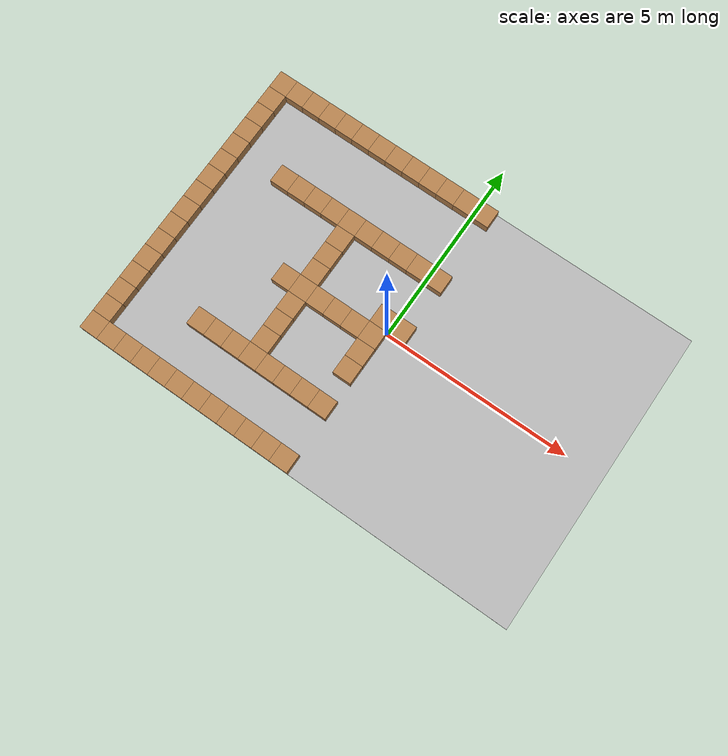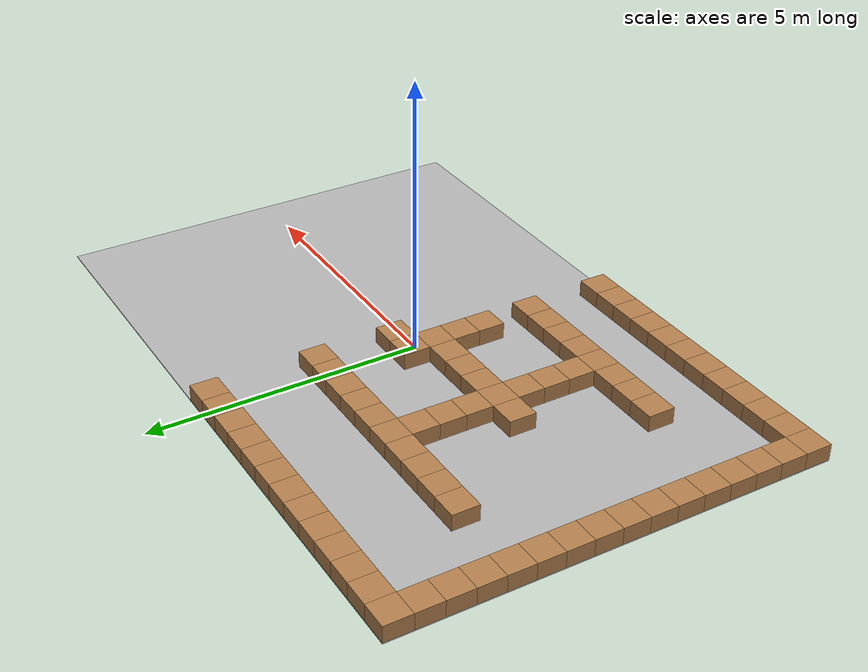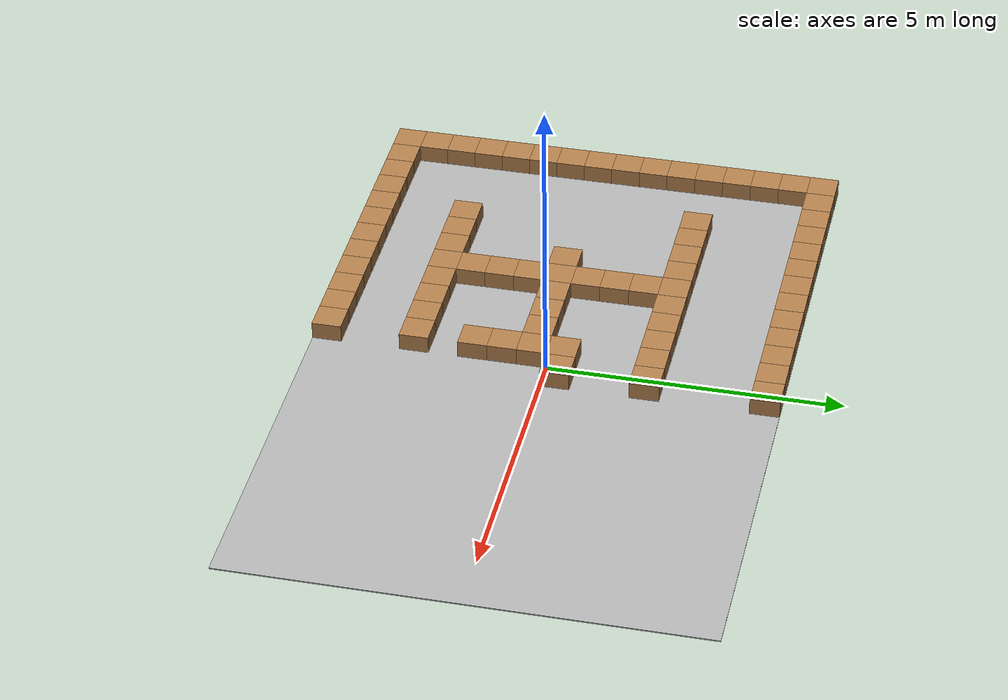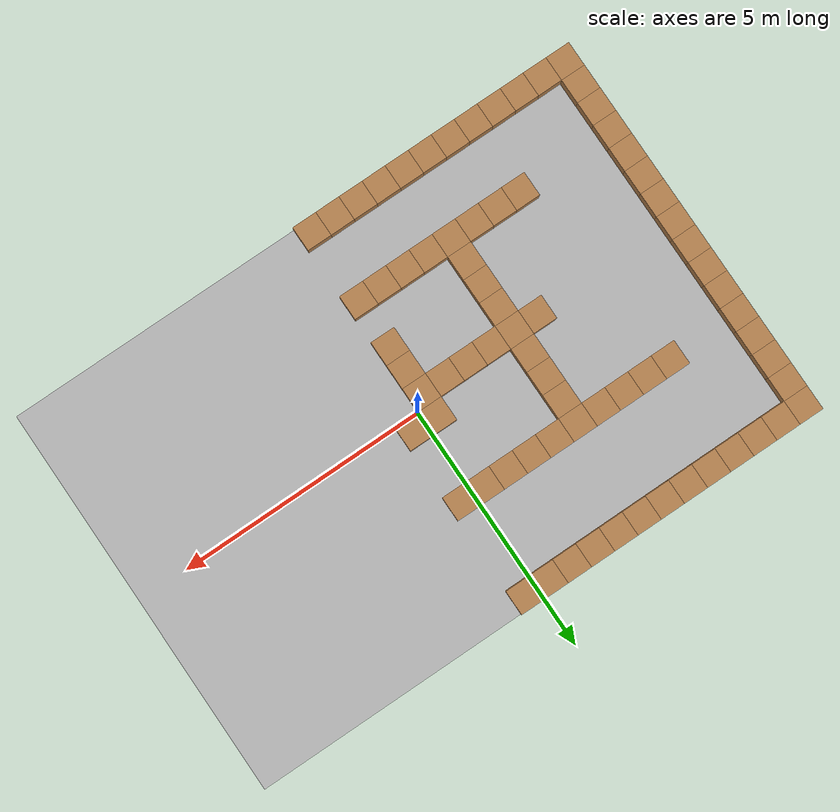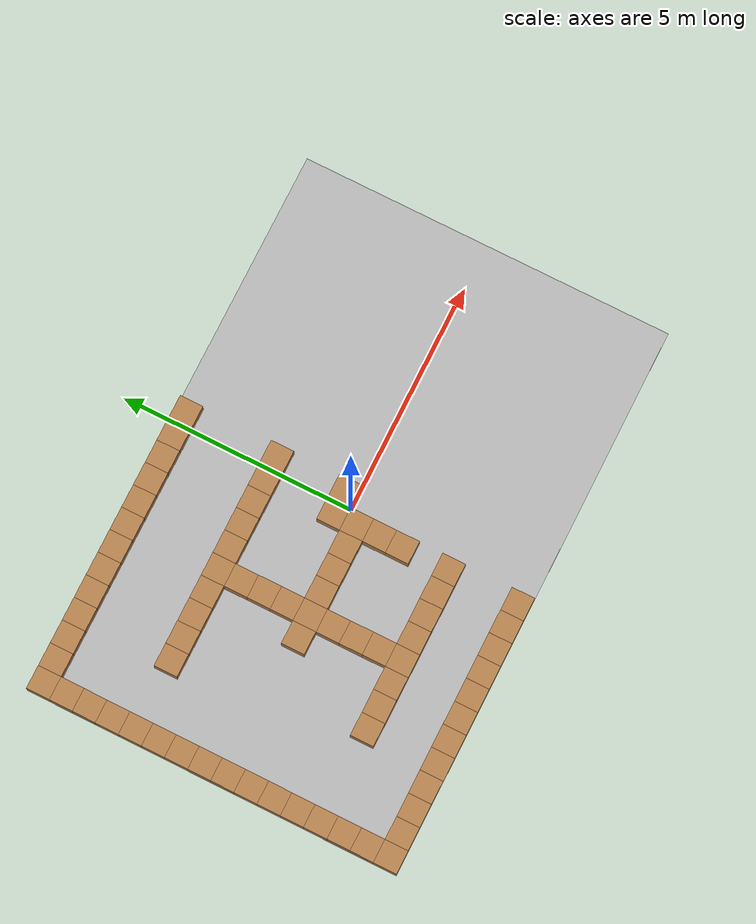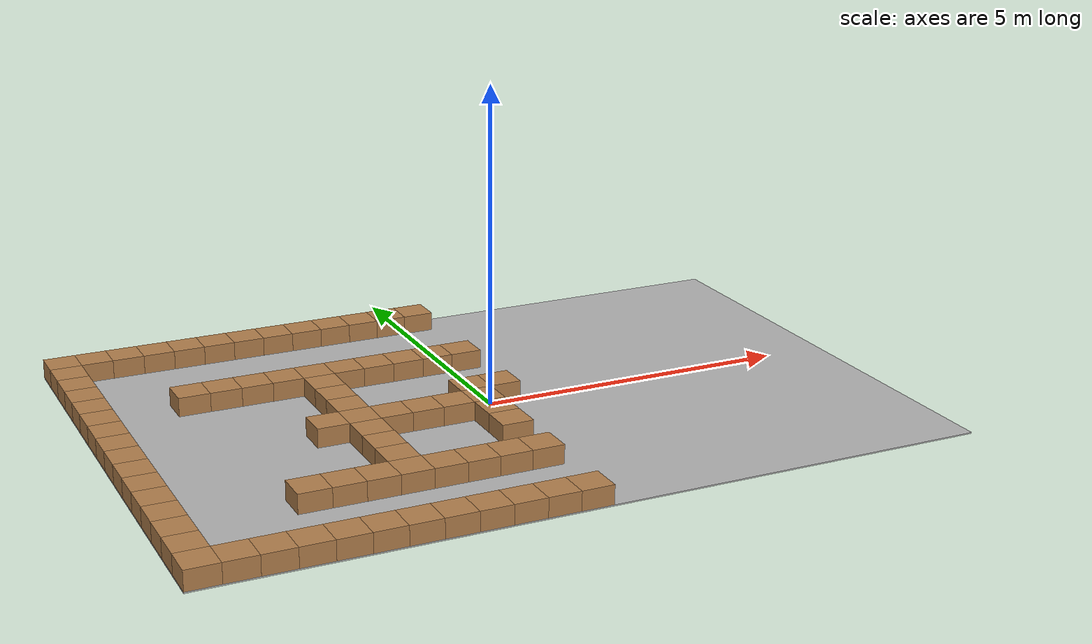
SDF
<sdf version="1.7">
 <world name="default">
  <model name="floor">
   <pose>0 0 -0.01 0 0 0</pose>
   <static>true</static>
   <link name="link">
    <collision name="col"><geometry><box><size>12.0 8.0 0.02</size></box></geometry></collision>
    <visual name="vis">
     <geometry><box><size>12.0 8.0 0.02</size></box></geometry>
     <material>
      <ambient>0.30 0.30 0.30 1</ambient>
      <diffuse>0.70 0.70 0.70 1</diffuse>
      <specular>0.10 0.10 0.10 1</specular>
     </material>
    </visual>
   </link>
  </model>
  <model name="tile_0_0">
   <pose>-5.75 3.75 0.15 0 0 0</pose>
   <static>true</static>
   <link name="link">
    <collision name="col"><geometry><box><size>0.5 0.5 0.3</size></box></geometry></collision>
    <visual name="vis">
     <geometry><box><size>0.5 0.5 0.3</size></box></geometry>
     <material>
      <ambient>0.30 0.20 0.10 1</ambient>
      <diffuse>0.70 0.50 0.30 1</diffuse>
      <specular>0.10 0.10 0.10 1</specular>
     </material>
    </visual>
   </link>
  </model>
  <model name="tile_0_1">
   <pose>-5.25 3.75 0.15 0 0 0</pose>
   <static>true</static>
   <link name="link">
    <collision name="col"><geometry><box><size>0.5 0.5 0.3</size></box></geometry></collision>
    <visual name="vis">
     <geometry><box><size>0.5 0.5 0.3</size></box></geometry>
     <material>
      <ambient>0.30 0.20 0.10 1</ambient>
      <diffuse>0.70 0.50 0.30 1</diffuse>
      <specular>0.10 0.10 0.10 1</specular>
     </material>
    </visual>
   </link>
  </model>
  <model name="tile_0_2">
   <pose>-4.75 3.75 0.15 0 0 0</pose>
   <static>true</static>
   <link name="link">
    <collision name="col"><geometry><box><size>0.5 0.5 0.3</size></box></geometry></collision>
    <visual name="vis">
     <geometry><box><size>0.5 0.5 0.3</size></box></geometry>
     <material>
      <ambient>0.30 0.20 0.10 1</ambient>
      <diffuse>0.70 0.50 0.30 1</diffuse>
      <specular>0.10 0.10 0.10 1</specular>
     </material>
    </visual>
   </link>
  </model>
  <model name="tile_0_3">
   <pose>-4.25 3.75 0.15 0 0 0</pose>
   <static>true</static>
   <link name="link">
    <collision name="col"><geometry><box><size>0.5 0.5 0.3</size></box></geometry></collision>
    <visual name="vis">
     <geometry><box><size>0.5 0.5 0.3</size></box></geometry>
     <material>
      <ambient>0.30 0.20 0.10 1</ambient>
      <diffuse>0.70 0.50 0.30 1</diffuse>
      <specular>0.10 0.10 0.10 1</specular>
     </material>
    </visual>
   </link>
  </model>
  <model name="tile_0_4">
   <pose>-3.75 3.75 0.15 0 0 0</pose>
   <static>true</static>
   <link name="link">
    <collision name="col"><geometry><box><size>0.5 0.5 0.3</size></box></geometry></collision>
    <visual name="vis">
     <geometry><box><size>0.5 0.5 0.3</size></box></geometry>
     <material>
      <ambient>0.30 0.20 0.10 1</ambient>
      <diffuse>0.70 0.50 0.30 1</diffuse>
      <specular>0.10 0.10 0.10 1</specular>
     </material>
    </visual>
   </link>
  </model>
  <model name="tile_0_5">
   <pose>-3.25 3.75 0.15 0 0 0</pose>
   <static>true</static>
   <link name="link">
    <collision name="col"><geometry><box><size>0.5 0.5 0.3</size></box></geometry></collision>
    <visual name="vis">
     <geometry><box><size>0.5 0.5 0.3</size></box></geometry>
     <material>
      <ambient>0.30 0.20 0.10 1</ambient>
      <diffuse>0.70 0.50 0.30 1</diffuse>
      <specular>0.10 0.10 0.10 1</specular>
     </material>
    </visual>
   </link>
  </model>
  <model name="tile_0_6">
   <pose>-2.75 3.75 0.15 0 0 0</pose>
   <static>true</static>
   <link name="link">
    <collision name="col"><geometry><box><size>0.5 0.5 0.3</size></box></geometry></collision>
    <visual name="vis">
     <geometry><box><size>0.5 0.5 0.3</size></box></geometry>
     <material>
      <ambient>0.30 0.20 0.10 1</ambient>
      <diffuse>0.70 0.50 0.30 1</diffuse>
      <specular>0.10 0.10 0.10 1</specular>
     </material>
    </visual>
   </link>
  </model>
  <model name="tile_0_7">
   <pose>-2.25 3.75 0.15 0 0 0</pose>
   <static>true</static>
   <link name="link">
    <collision name="col"><geometry><box><size>0.5 0.5 0.3</size></box></geometry></collision>
    <visual name="vis">
     <geometry><box><size>0.5 0.5 0.3</size></box></geometry>
     <material>
      <ambient>0.30 0.20 0.10 1</ambient>
      <diffuse>0.70 0.50 0.30 1</diffuse>
      <specular>0.10 0.10 0.10 1</specular>
     </material>
    </visual>
   </link>
  </model>
  <model name="tile_0_8">
   <pose>-1.75 3.75 0.15 0 0 0</pose>
   <static>true</static>
   <link name="link">
    <collision name="col"><geometry><box><size>0.5 0.5 0.3</size></box></geometry></collision>
    <visual name="vis">
     <geometry><box><size>0.5 0.5 0.3</size></box></geometry>
     <material>
      <ambient>0.30 0.20 0.10 1</ambient>
      <diffuse>0.70 0.50 0.30 1</diffuse>
      <specular>0.10 0.10 0.10 1</specular>
     </material>
    </visual>
   </link>
  </model>
  <model name="tile_0_9">
   <pose>-1.25 3.75 0.15 0 0 0</pose>
   <static>true</static>
   <link name="link">
    <collision name="col"><geometry><box><size>0.5 0.5 0.3</size></box></geometry></collision>
    <visual name="vis">
     <geometry><box><size>0.5 0.5 0.3</size></box></geometry>
     <material>
      <ambient>0.30 0.20 0.10 1</ambient>
      <diffuse>0.70 0.50 0.30 1</diffuse>
      <specular>0.10 0.10 0.10 1</specular>
     </material>
    </visual>
   </link>
  </model>
  <model name="tile_0_10">
   <pose>-0.75 3.75 0.15 0 0 0</pose>
   <static>true</static>
   <link name="link">
    <collision name="col"><geometry><box><size>0.5 0.5 0.3</size></box></geometry></collision>
    <visual name="vis">
     <geometry><box><size>0.5 0.5 0.3</size></box></geometry>
     <material>
      <ambient>0.30 0.20 0.10 1</ambient>
      <diffuse>0.70 0.50 0.30 1</diffuse>
      <specular>0.10 0.10 0.10 1</specular>
     </material>
    </visual>
   </link>
  </model>
  <model name="tile_0_11">
   <pose>-0.25 3.75 0.15 0 0 0</pose>
   <static>true</static>
   <link name="link">
    <collision name="col"><geometry><box><size>0.5 0.5 0.3</size></box></geometry></collision>
    <visual name="vis">
     <geometry><box><size>0.5 0.5 0.3</size></box></geometry>
     <material>
      <ambient>0.30 0.20 0.10 1</ambient>
      <diffuse>0.70 0.50 0.30 1</diffuse>
      <specular>0.10 0.10 0.10 1</specular>
     </material>
    </visual>
   </link>
  </model>
  <model name="tile_0_12">
   <pose>0.25 3.75 0.15 0 0 0</pose>
   <static>true</static>
   <link name="link">
    <collision name="col"><geometry><box><size>0.5 0.5 0.3</size></box></geometry></collision>
    <visual name="vis">
     <geometry><box><size>0.5 0.5 0.3</size></box></geometry>
     <material>
      <ambient>0.30 0.20 0.10 1</ambient>
      <diffuse>0.70 0.50 0.30 1</diffuse>
      <specular>0.10 0.10 0.10 1</specular>
     </material>
    </visual>
   </link>
  </model>
  <model name="tile_1_0">
   <pose>-5.75 3.25 0.15 0 0 0</pose>
   <static>true</static>
   <link name="link">
    <collision name="col"><geometry><box><size>0.5 0.5 0.3</size></box></geometry></collision>
    <visual name="vis">
     <geometry><box><size>0.5 0.5 0.3</size></box></geometry>
     <material>
      <ambient>0.30 0.20 0.10 1</ambient>
      <diffuse>0.70 0.50 0.30 1</diffuse>
      <specular>0.10 0.10 0.10 1</specular>
     </material>
    </visual>
   </link>
  </model>
  <model name="tile_2_0">
   <pose>-5.75 2.75 0.15 0 0 0</pose>
   <static>true</static>
   <link name="link">
    <collision name="col"><geometry><box><size>0.5 0.5 0.3</size></box></geometry></collision>
    <visual name="vis">
     <geometry><box><size>0.5 0.5 0.3</size></box></geometry>
     <material>
      <ambient>0.30 0.20 0.10 1</ambient>
      <diffuse>0.70 0.50 0.30 1</diffuse>
      <specular>0.10 0.10 0.10 1</specular>
     </material>
    </visual>
   </link>
  </model>
  <model name="tile_3_0">
   <pose>-5.75 2.25 0.15 0 0 0</pose>
   <static>true</static>
   <link name="link">
    <collision name="col"><geometry><box><size>0.5 0.5 0.3</size></box></geometry></collision>
    <visual name="vis">
     <geometry><box><size>0.5 0.5 0.3</size></box></geometry>
     <material>
      <ambient>0.30 0.20 0.10 1</ambient>
      <diffuse>0.70 0.50 0.30 1</diffuse>
      <specular>0.10 0.10 0.10 1</specular>
     </material>
    </visual>
   </link>
  </model>
  <model name="tile_4_0">
   <pose>-5.75 1.75 0.15 0 0 0</pose>
   <static>true</static>
   <link name="link">
    <collision name="col"><geometry><box><size>0.5 0.5 0.3</size></box></geometry></collision>
    <visual name="vis">
     <geometry><box><size>0.5 0.5 0.3</size></box></geometry>
     <material>
      <ambient>0.30 0.20 0.10 1</ambient>
      <diffuse>0.70 0.50 0.30 1</diffuse>
      <specular>0.10 0.10 0.10 1</specular>
     </material>
    </visual>
   </link>
  </model>
  <model name="tile_4_3">
   <pose>-4.25 1.75 0.15 0 0 0</pose>
   <static>true</static>
   <link name="link">
    <collision name="col"><geometry><box><size>0.5 0.5 0.3</size></box></geometry></collision>
    <visual name="vis">
     <geometry><box><size>0.5 0.5 0.3</size></box></geometry>
     <material>
      <ambient>0.30 0.20 0.10 1</ambient>
      <diffuse>0.70 0.50 0.30 1</diffuse>
      <specular>0.10 0.10 0.10 1</specular>
     </material>
    </visual>
   </link>
  </model>
  <model name="tile_4_4">
   <pose>-3.75 1.75 0.15 0 0 0</pose>
   <static>true</static>
   <link name="link">
    <collision name="col"><geometry><box><size>0.5 0.5 0.3</size></box></geometry></collision>
    <visual name="vis">
     <geometry><box><size>0.5 0.5 0.3</size></box></geometry>
     <material>
      <ambient>0.30 0.20 0.10 1</ambient>
      <diffuse>0.70 0.50 0.30 1</diffuse>
      <specular>0.10 0.10 0.10 1</specular>
     </material>
    </visual>
   </link>
  </model>
  <model name="tile_4_5">
   <pose>-3.25 1.75 0.15 0 0 0</pose>
   <static>true</static>
   <link name="link">
    <collision name="col"><geometry><box><size>0.5 0.5 0.3</size></box></geometry></collision>
    <visual name="vis">
     <geometry><box><size>0.5 0.5 0.3</size></box></geometry>
     <material>
      <ambient>0.30 0.20 0.10 1</ambient>
      <diffuse>0.70 0.50 0.30 1</diffuse>
      <specular>0.10 0.10 0.10 1</specular>
     </material>
    </visual>
   </link>
  </model>
  <model name="tile_4_6">
   <pose>-2.75 1.75 0.15 0 0 0</pose>
   <static>true</static>
   <link name="link">
    <collision name="col"><geometry><box><size>0.5 0.5 0.3</size></box></geometry></collision>
    <visual name="vis">
     <geometry><box><size>0.5 0.5 0.3</size></box></geometry>
     <material>
      <ambient>0.30 0.20 0.10 1</ambient>
      <diffuse>0.70 0.50 0.30 1</diffuse>
      <specular>0.10 0.10 0.10 1</specular>
     </material>
    </visual>
   </link>
  </model>
  <model name="tile_4_7">
   <pose>-2.25 1.75 0.15 0 0 0</pose>
   <static>true</static>
   <link name="link">
    <collision name="col"><geometry><box><size>0.5 0.5 0.3</size></box></geometry></collision>
    <visual name="vis">
     <geometry><box><size>0.5 0.5 0.3</size></box></geometry>
     <material>
      <ambient>0.30 0.20 0.10 1</ambient>
      <diffuse>0.70 0.50 0.30 1</diffuse>
      <specular>0.10 0.10 0.10 1</specular>
     </material>
    </visual>
   </link>
  </model>
  <model name="tile_4_8">
   <pose>-1.75 1.75 0.15 0 0 0</pose>
   <static>true</static>
   <link name="link">
    <collision name="col"><geometry><box><size>0.5 0.5 0.3</size></box></geometry></collision>
    <visual name="vis">
     <geometry><box><size>0.5 0.5 0.3</size></box></geometry>
     <material>
      <ambient>0.30 0.20 0.10 1</ambient>
      <diffuse>0.70 0.50 0.30 1</diffuse>
      <specular>0.10 0.10 0.10 1</specular>
     </material>
    </visual>
   </link>
  </model>
  <model name="tile_4_9">
   <pose>-1.25 1.75 0.15 0 0 0</pose>
   <static>true</static>
   <link name="link">
    <collision name="col"><geometry><box><size>0.5 0.5 0.3</size></box></geometry></collision>
    <visual name="vis">
     <geometry><box><size>0.5 0.5 0.3</size></box></geometry>
     <material>
      <ambient>0.30 0.20 0.10 1</ambient>
      <diffuse>0.70 0.50 0.30 1</diffuse>
      <specular>0.10 0.10 0.10 1</specular>
     </material>
    </visual>
   </link>
  </model>
  <model name="tile_4_10">
   <pose>-0.75 1.75 0.15 0 0 0</pose>
   <static>true</static>
   <link name="link">
    <collision name="col"><geometry><box><size>0.5 0.5 0.3</size></box></geometry></collision>
    <visual name="vis">
     <geometry><box><size>0.5 0.5 0.3</size></box></geometry>
     <material>
      <ambient>0.30 0.20 0.10 1</ambient>
      <diffuse>0.70 0.50 0.30 1</diffuse>
      <specular>0.10 0.10 0.10 1</specular>
     </material>
    </visual>
   </link>
  </model>
  <model name="tile_4_11">
   <pose>-0.25 1.75 0.15 0 0 0</pose>
   <static>true</static>
   <link name="link">
    <collision name="col"><geometry><box><size>0.5 0.5 0.3</size></box></geometry></collision>
    <visual name="vis">
     <geometry><box><size>0.5 0.5 0.3</size></box></geometry>
     <material>
      <ambient>0.30 0.20 0.10 1</ambient>
      <diffuse>0.70 0.50 0.30 1</diffuse>
      <specular>0.10 0.10 0.10 1</specular>
     </material>
    </visual>
   </link>
  </model>
  <model name="tile_4_12">
   <pose>0.25 1.75 0.15 0 0 0</pose>
   <static>true</static>
   <link name="link">
    <collision name="col"><geometry><box><size>0.5 0.5 0.3</size></box></geometry></collision>
    <visual name="vis">
     <geometry><box><size>0.5 0.5 0.3</size></box></geometry>
     <material>
      <ambient>0.30 0.20 0.10 1</ambient>
      <diffuse>0.70 0.50 0.30 1</diffuse>
      <specular>0.10 0.10 0.10 1</specular>
     </material>
    </visual>
   </link>
  </model>
  <model name="tile_5_0">
   <pose>-5.75 1.25 0.15 0 0 0</pose>
   <static>true</static>
   <link name="link">
    <collision name="col"><geometry><box><size>0.5 0.5 0.3</size></box></geometry></collision>
    <visual name="vis">
     <geometry><box><size>0.5 0.5 0.3</size></box></geometry>
     <material>
      <ambient>0.30 0.20 0.10 1</ambient>
      <diffuse>0.70 0.50 0.30 1</diffuse>
      <specular>0.10 0.10 0.10 1</specular>
     </material>
    </visual>
   </link>
  </model>
  <model name="tile_5_7">
   <pose>-2.25 1.25 0.15 0 0 0</pose>
   <static>true</static>
   <link name="link">
    <collision name="col"><geometry><box><size>0.5 0.5 0.3</size></box></geometry></collision>
    <visual name="vis">
     <geometry><box><size>0.5 0.5 0.3</size></box></geometry>
     <material>
      <ambient>0.30 0.20 0.10 1</ambient>
      <diffuse>0.70 0.50 0.30 1</diffuse>
      <specular>0.10 0.10 0.10 1</specular>
     </material>
    </visual>
   </link>
  </model>
  <model name="tile_6_0">
   <pose>-5.75 0.75 0.15 0 0 0</pose>
   <static>true</static>
   <link name="link">
    <collision name="col"><geometry><box><size>0.5 0.5 0.3</size></box></geometry></collision>
    <visual name="vis">
     <geometry><box><size>0.5 0.5 0.3</size></box></geometry>
     <material>
      <ambient>0.30 0.20 0.10 1</ambient>
      <diffuse>0.70 0.50 0.30 1</diffuse>
      <specular>0.10 0.10 0.10 1</specular>
     </material>
    </visual>
   </link>
  </model>
  <model name="tile_6_7">
   <pose>-2.25 0.75 0.15 0 0 0</pose>
   <static>true</static>
   <link name="link">
    <collision name="col"><geometry><box><size>0.5 0.5 0.3</size></box></geometry></collision>
    <visual name="vis">
     <geometry><box><size>0.5 0.5 0.3</size></box></geometry>
     <material>
      <ambient>0.30 0.20 0.10 1</ambient>
      <diffuse>0.70 0.50 0.30 1</diffuse>
      <specular>0.10 0.10 0.10 1</specular>
     </material>
    </visual>
   </link>
  </model>
  <model name="tile_7_0">
   <pose>-5.75 0.25 0.15 0 0 0</pose>
   <static>true</static>
   <link name="link">
    <collision name="col"><geometry><box><size>0.5 0.5 0.3</size></box></geometry></collision>
    <visual name="vis">
     <geometry><box><size>0.5 0.5 0.3</size></box></geometry>
     <material>
      <ambient>0.30 0.20 0.10 1</ambient>
      <diffuse>0.70 0.50 0.30 1</diffuse>
      <specular>0.10 0.10 0.10 1</specular>
     </material>
    </visual>
   </link>
  </model>
  <model name="tile_7_7">
   <pose>-2.25 0.25 0.15 0 0 0</pose>
   <static>true</static>
   <link name="link">
    <collision name="col"><geometry><box><size>0.5 0.5 0.3</size></box></geometry></collision>
    <visual name="vis">
     <geometry><box><size>0.5 0.5 0.3</size></box></geometry>
     <material>
      <ambient>0.30 0.20 0.10 1</ambient>
      <diffuse>0.70 0.50 0.30 1</diffuse>
      <specular>0.10 0.10 0.10 1</specular>
     </material>
    </visual>
   </link>
  </model>
  <model name="tile_7_11">
   <pose>-0.25 0.25 0.15 0 0 0</pose>
   <static>true</static>
   <link name="link">
    <collision name="col"><geometry><box><size>0.5 0.5 0.3</size></box></geometry></collision>
    <visual name="vis">
     <geometry><box><size>0.5 0.5 0.3</size></box></geometry>
     <material>
      <ambient>0.30 0.20 0.10 1</ambient>
      <diffuse>0.70 0.50 0.30 1</diffuse>
      <specular>0.10 0.10 0.10 1</specular>
     </material>
    </visual>
   </link>
  </model>
  <model name="tile_7_12">
   <pose>0.25 0.25 0.15 0 0 0</pose>
   <static>true</static>
   <link name="link">
    <collision name="col"><geometry><box><size>0.5 0.5 0.3</size></box></geometry></collision>
    <visual name="vis">
     <geometry><box><size>0.5 0.5 0.3</size></box></geometry>
     <material>
      <ambient>0.30 0.20 0.10 1</ambient>
      <diffuse>0.70 0.50 0.30 1</diffuse>
      <specular>0.10 0.10 0.10 1</specular>
     </material>
    </visual>
   </link>
  </model>
  <model name="tile_8_0">
   <pose>-5.75 -0.25 0.15 0 0 0</pose>
   <static>true</static>
   <link name="link">
    <collision name="col"><geometry><box><size>0.5 0.5 0.3</size></box></geometry></collision>
    <visual name="vis">
     <geometry><box><size>0.5 0.5 0.3</size></box></geometry>
     <material>
      <ambient>0.30 0.20 0.10 1</ambient>
      <diffuse>0.70 0.50 0.30 1</diffuse>
      <specular>0.10 0.10 0.10 1</specular>
     </material>
    </visual>
   </link>
  </model>
  <model name="tile_8_6">
   <pose>-2.75 -0.25 0.15 0 0 0</pose>
   <static>true</static>
   <link name="link">
    <collision name="col"><geometry><box><size>0.5 0.5 0.3</size></box></geometry></collision>
    <visual name="vis">
     <geometry><box><size>0.5 0.5 0.3</size></box></geometry>
     <material>
      <ambient>0.30 0.20 0.10 1</ambient>
      <diffuse>0.70 0.50 0.30 1</diffuse>
      <specular>0.10 0.10 0.10 1</specular>
     </material>
    </visual>
   </link>
  </model>
  <model name="tile_8_7">
   <pose>-2.25 -0.25 0.15 0 0 0</pose>
   <static>true</static>
   <link name="link">
    <collision name="col"><geometry><box><size>0.5 0.5 0.3</size></box></geometry></collision>
    <visual name="vis">
     <geometry><box><size>0.5 0.5 0.3</size></box></geometry>
     <material>
      <ambient>0.30 0.20 0.10 1</ambient>
      <diffuse>0.70 0.50 0.30 1</diffuse>
      <specular>0.10 0.10 0.10 1</specular>
     </material>
    </visual>
   </link>
  </model>
  <model name="tile_8_8">
   <pose>-1.75 -0.25 0.15 0 0 0</pose>
   <static>true</static>
   <link name="link">
    <collision name="col"><geometry><box><size>0.5 0.5 0.3</size></box></geometry></collision>
    <visual name="vis">
     <geometry><box><size>0.5 0.5 0.3</size></box></geometry>
     <material>
      <ambient>0.30 0.20 0.10 1</ambient>
      <diffuse>0.70 0.50 0.30 1</diffuse>
      <specular>0.10 0.10 0.10 1</specular>
     </material>
    </visual>
   </link>
  </model>
  <model name="tile_8_9">
   <pose>-1.25 -0.25 0.15 0 0 0</pose>
   <static>true</static>
   <link name="link">
    <collision name="col"><geometry><box><size>0.5 0.5 0.3</size></box></geometry></collision>
    <visual name="vis">
     <geometry><box><size>0.5 0.5 0.3</size></box></geometry>
     <material>
      <ambient>0.30 0.20 0.10 1</ambient>
      <diffuse>0.70 0.50 0.30 1</diffuse>
      <specular>0.10 0.10 0.10 1</specular>
     </material>
    </visual>
   </link>
  </model>
  <model name="tile_8_10">
   <pose>-0.75 -0.25 0.15 0 0 0</pose>
   <static>true</static>
   <link name="link">
    <collision name="col"><geometry><box><size>0.5 0.5 0.3</size></box></geometry></collision>
    <visual name="vis">
     <geometry><box><size>0.5 0.5 0.3</size></box></geometry>
     <material>
      <ambient>0.30 0.20 0.10 1</ambient>
      <diffuse>0.70 0.50 0.30 1</diffuse>
      <specular>0.10 0.10 0.10 1</specular>
     </material>
    </visual>
   </link>
  </model>
  <model name="tile_8_11">
   <pose>-0.25 -0.25 0.15 0 0 0</pose>
   <static>true</static>
   <link name="link">
    <collision name="col"><geometry><box><size>0.5 0.5 0.3</size></box></geometry></collision>
    <visual name="vis">
     <geometry><box><size>0.5 0.5 0.3</size></box></geometry>
     <material>
      <ambient>0.30 0.20 0.10 1</ambient>
      <diffuse>0.70 0.50 0.30 1</diffuse>
      <specular>0.10 0.10 0.10 1</specular>
     </material>
    </visual>
   </link>
  </model>
  <model name="tile_9_0">
   <pose>-5.75 -0.75 0.15 0 0 0</pose>
   <static>true</static>
   <link name="link">
    <collision name="col"><geometry><box><size>0.5 0.5 0.3</size></box></geometry></collision>
    <visual name="vis">
     <geometry><box><size>0.5 0.5 0.3</size></box></geometry>
     <material>
      <ambient>0.30 0.20 0.10 1</ambient>
      <diffuse>0.70 0.50 0.30 1</diffuse>
      <specular>0.10 0.10 0.10 1</specular>
     </material>
    </visual>
   </link>
  </model>
  <model name="tile_9_7">
   <pose>-2.25 -0.75 0.15 0 0 0</pose>
   <static>true</static>
   <link name="link">
    <collision name="col"><geometry><box><size>0.5 0.5 0.3</size></box></geometry></collision>
    <visual name="vis">
     <geometry><box><size>0.5 0.5 0.3</size></box></geometry>
     <material>
      <ambient>0.30 0.20 0.10 1</ambient>
      <diffuse>0.70 0.50 0.30 1</diffuse>
      <specular>0.10 0.10 0.10 1</specular>
     </material>
    </visual>
   </link>
  </model>
  <model name="tile_9_11">
   <pose>-0.25 -0.75 0.15 0 0 0</pose>
   <static>true</static>
   <link name="link">
    <collision name="col"><geometry><box><size>0.5 0.5 0.3</size></box></geometry></collision>
    <visual name="vis">
     <geometry><box><size>0.5 0.5 0.3</size></box></geometry>
     <material>
      <ambient>0.30 0.20 0.10 1</ambient>
      <diffuse>0.70 0.50 0.30 1</diffuse>
      <specular>0.10 0.10 0.10 1</specular>
     </material>
    </visual>
   </link>
  </model>
  <model name="tile_10_0">
   <pose>-5.75 -1.25 0.15 0 0 0</pose>
   <static>true</static>
   <link name="link">
    <collision name="col"><geometry><box><size>0.5 0.5 0.3</size></box></geometry></collision>
    <visual name="vis">
     <geometry><box><size>0.5 0.5 0.3</size></box></geometry>
     <material>
      <ambient>0.30 0.20 0.10 1</ambient>
      <diffuse>0.70 0.50 0.30 1</diffuse>
      <specular>0.10 0.10 0.10 1</specular>
     </material>
    </visual>
   </link>
  </model>
  <model name="tile_10_7">
   <pose>-2.25 -1.25 0.15 0 0 0</pose>
   <static>true</static>
   <link name="link">
    <collision name="col"><geometry><box><size>0.5 0.5 0.3</size></box></geometry></collision>
    <visual name="vis">
     <geometry><box><size>0.5 0.5 0.3</size></box></geometry>
     <material>
      <ambient>0.30 0.20 0.10 1</ambient>
      <diffuse>0.70 0.50 0.30 1</diffuse>
      <specular>0.10 0.10 0.10 1</specular>
     </material>
    </visual>
   </link>
  </model>
  <model name="tile_10_11">
   <pose>-0.25 -1.25 0.15 0 0 0</pose>
   <static>true</static>
   <link name="link">
    <collision name="col"><geometry><box><size>0.5 0.5 0.3</size></box></geometry></collision>
    <visual name="vis">
     <geometry><box><size>0.5 0.5 0.3</size></box></geometry>
     <material>
      <ambient>0.30 0.20 0.10 1</ambient>
      <diffuse>0.70 0.50 0.30 1</diffuse>
      <specular>0.10 0.10 0.10 1</specular>
     </material>
    </visual>
   </link>
  </model>
  <model name="tile_11_0">
   <pose>-5.75 -1.75 0.15 0 0 0</pose>
   <static>true</static>
   <link name="link">
    <collision name="col"><geometry><box><size>0.5 0.5 0.3</size></box></geometry></collision>
    <visual name="vis">
     <geometry><box><size>0.5 0.5 0.3</size></box></geometry>
     <material>
      <ambient>0.30 0.20 0.10 1</ambient>
      <diffuse>0.70 0.50 0.30 1</diffuse>
      <specular>0.10 0.10 0.10 1</specular>
     </material>
    </visual>
   </link>
  </model>
  <model name="tile_11_7">
   <pose>-2.25 -1.75 0.15 0 0 0</pose>
   <static>true</static>
   <link name="link">
    <collision name="col"><geometry><box><size>0.5 0.5 0.3</size></box></geometry></collision>
    <visual name="vis">
     <geometry><box><size>0.5 0.5 0.3</size></box></geometry>
     <material>
      <ambient>0.30 0.20 0.10 1</ambient>
      <diffuse>0.70 0.50 0.30 1</diffuse>
      <specular>0.10 0.10 0.10 1</specular>
     </material>
    </visual>
   </link>
  </model>
  <model name="tile_12_0">
   <pose>-5.75 -2.25 0.15 0 0 0</pose>
   <static>true</static>
   <link name="link">
    <collision name="col"><geometry><box><size>0.5 0.5 0.3</size></box></geometry></collision>
    <visual name="vis">
     <geometry><box><size>0.5 0.5 0.3</size></box></geometry>
     <material>
      <ambient>0.30 0.20 0.10 1</ambient>
      <diffuse>0.70 0.50 0.30 1</diffuse>
      <specular>0.10 0.10 0.10 1</specular>
     </material>
    </visual>
   </link>
  </model>
  <model name="tile_12_4">
   <pose>-3.75 -2.25 0.15 0 0 0</pose>
   <static>true</static>
   <link name="link">
    <collision name="col"><geometry><box><size>0.5 0.5 0.3</size></box></geometry></collision>
    <visual name="vis">
     <geometry><box><size>0.5 0.5 0.3</size></box></geometry>
     <material>
      <ambient>0.30 0.20 0.10 1</ambient>
      <diffuse>0.70 0.50 0.30 1</diffuse>
      <specular>0.10 0.10 0.10 1</specular>
     </material>
    </visual>
   </link>
  </model>
  <model name="tile_12_5">
   <pose>-3.25 -2.25 0.15 0 0 0</pose>
   <static>true</static>
   <link name="link">
    <collision name="col"><geometry><box><size>0.5 0.5 0.3</size></box></geometry></collision>
    <visual name="vis">
     <geometry><box><size>0.5 0.5 0.3</size></box></geometry>
     <material>
      <ambient>0.30 0.20 0.10 1</ambient>
      <diffuse>0.70 0.50 0.30 1</diffuse>
      <specular>0.10 0.10 0.10 1</specular>
     </material>
    </visual>
   </link>
  </model>
  <model name="tile_12_6">
   <pose>-2.75 -2.25 0.15 0 0 0</pose>
   <static>true</static>
   <link name="link">
    <collision name="col"><geometry><box><size>0.5 0.5 0.3</size></box></geometry></collision>
    <visual name="vis">
     <geometry><box><size>0.5 0.5 0.3</size></box></geometry>
     <material>
      <ambient>0.30 0.20 0.10 1</ambient>
      <diffuse>0.70 0.50 0.30 1</diffuse>
      <specular>0.10 0.10 0.10 1</specular>
     </material>
    </visual>
   </link>
  </model>
  <model name="tile_12_7">
   <pose>-2.25 -2.25 0.15 0 0 0</pose>
   <static>true</static>
   <link name="link">
    <collision name="col"><geometry><box><size>0.5 0.5 0.3</size></box></geometry></collision>
    <visual name="vis">
     <geometry><box><size>0.5 0.5 0.3</size></box></geometry>
     <material>
      <ambient>0.30 0.20 0.10 1</ambient>
      <diffuse>0.70 0.50 0.30 1</diffuse>
      <specular>0.10 0.10 0.10 1</specular>
     </material>
    </visual>
   </link>
  </model>
  <model name="tile_12_8">
   <pose>-1.75 -2.25 0.15 0 0 0</pose>
   <static>true</static>
   <link name="link">
    <collision name="col"><geometry><box><size>0.5 0.5 0.3</size></box></geometry></collision>
    <visual name="vis">
     <geometry><box><size>0.5 0.5 0.3</size></box></geometry>
     <material>
      <ambient>0.30 0.20 0.10 1</ambient>
      <diffuse>0.70 0.50 0.30 1</diffuse>
      <specular>0.10 0.10 0.10 1</specular>
     </material>
    </visual>
   </link>
  </model>
  <model name="tile_12_9">
   <pose>-1.25 -2.25 0.15 0 0 0</pose>
   <static>true</static>
   <link name="link">
    <collision name="col"><geometry><box><size>0.5 0.5 0.3</size></box></geometry></collision>
    <visual name="vis">
     <geometry><box><size>0.5 0.5 0.3</size></box></geometry>
     <material>
      <ambient>0.30 0.20 0.10 1</ambient>
      <diffuse>0.70 0.50 0.30 1</diffuse>
      <specular>0.10 0.10 0.10 1</specular>
     </material>
    </visual>
   </link>
  </model>
  <model name="tile_12_10">
   <pose>-0.75 -2.25 0.15 0 0 0</pose>
   <static>true</static>
   <link name="link">
    <collision name="col"><geometry><box><size>0.5 0.5 0.3</size></box></geometry></collision>
    <visual name="vis">
     <geometry><box><size>0.5 0.5 0.3</size></box></geometry>
     <material>
      <ambient>0.30 0.20 0.10 1</ambient>
      <diffuse>0.70 0.50 0.30 1</diffuse>
      <specular>0.10 0.10 0.10 1</specular>
     </material>
    </visual>
   </link>
  </model>
  <model name="tile_12_11">
   <pose>-0.25 -2.25 0.15 0 0 0</pose>
   <static>true</static>
   <link name="link">
    <collision name="col"><geometry><box><size>0.5 0.5 0.3</size></box></geometry></collision>
    <visual name="vis">
     <geometry><box><size>0.5 0.5 0.3</size></box></geometry>
     <material>
      <ambient>0.30 0.20 0.10 1</ambient>
      <diffuse>0.70 0.50 0.30 1</diffuse>
      <specular>0.10 0.10 0.10 1</specular>
     </material>
    </visual>
   </link>
  </model>
  <model name="tile_13_0">
   <pose>-5.75 -2.75 0.15 0 0 0</pose>
   <static>true</static>
   <link name="link">
    <collision name="col"><geometry><box><size>0.5 0.5 0.3</size></box></geometry></collision>
    <visual name="vis">
     <geometry><box><size>0.5 0.5 0.3</size></box></geometry>
     <material>
      <ambient>0.30 0.20 0.10 1</ambient>
      <diffuse>0.70 0.50 0.30 1</diffuse>
      <specular>0.10 0.10 0.10 1</specular>
     </material>
    </visual>
   </link>
  </model>
  <model name="tile_14_0">
   <pose>-5.75 -3.25 0.15 0 0 0</pose>
   <static>true</static>
   <link name="link">
    <collision name="col"><geometry><box><size>0.5 0.5 0.3</size></box></geometry></collision>
    <visual name="vis">
     <geometry><box><size>0.5 0.5 0.3</size></box></geometry>
     <material>
      <ambient>0.30 0.20 0.10 1</ambient>
      <diffuse>0.70 0.50 0.30 1</diffuse>
      <specular>0.10 0.10 0.10 1</specular>
     </material>
    </visual>
   </link>
  </model>
  <model name="tile_15_0">
   <pose>-5.75 -3.75 0.15 0 0 0</pose>
   <static>true</static>
   <link name="link">
    <collision name="col"><geometry><box><size>0.5 0.5 0.3</size></box></geometry></collision>
    <visual name="vis">
     <geometry><box><size>0.5 0.5 0.3</size></box></geometry>
     <material>
      <ambient>0.30 0.20 0.10 1</ambient>
      <diffuse>0.70 0.50 0.30 1</diffuse>
      <specular>0.10 0.10 0.10 1</specular>
     </material>
    </visual>
   </link>
  </model>
  <model name="tile_15_1">
   <pose>-5.25 -3.75 0.15 0 0 0</pose>
   <static>true</static>
   <link name="link">
    <collision name="col"><geometry><box><size>0.5 0.5 0.3</size></box></geometry></collision>
    <visual name="vis">
     <geometry><box><size>0.5 0.5 0.3</size></box></geometry>
     <material>
      <ambient>0.30 0.20 0.10 1</ambient>
      <diffuse>0.70 0.50 0.30 1</diffuse>
      <specular>0.10 0.10 0.10 1</specular>
     </material>
    </visual>
   </link>
  </model>
  <model name="tile_15_2">
   <pose>-4.75 -3.75 0.15 0 0 0</pose>
   <static>true</static>
   <link name="link">
    <collision name="col"><geometry><box><size>0.5 0.5 0.3</size></box></geometry></collision>
    <visual name="vis">
     <geometry><box><size>0.5 0.5 0.3</size></box></geometry>
     <material>
      <ambient>0.30 0.20 0.10 1</ambient>
      <diffuse>0.70 0.50 0.30 1</diffuse>
      <specular>0.10 0.10 0.10 1</specular>
     </material>
    </visual>
   </link>
  </model>
  <model name="tile_15_3">
   <pose>-4.25 -3.75 0.15 0 0 0</pose>
   <static>true</static>
   <link name="link">
    <collision name="col"><geometry><box><size>0.5 0.5 0.3</size></box></geometry></collision>
    <visual name="vis">
     <geometry><box><size>0.5 0.5 0.3</size></box></geometry>
     <material>
      <ambient>0.30 0.20 0.10 1</ambient>
      <diffuse>0.70 0.50 0.30 1</diffuse>
      <specular>0.10 0.10 0.10 1</specular>
     </material>
    </visual>
   </link>
  </model>
  <model name="tile_15_4">
   <pose>-3.75 -3.75 0.15 0 0 0</pose>
   <static>true</static>
   <link name="link">
    <collision name="col"><geometry><box><size>0.5 0.5 0.3</size></box></geometry></collision>
    <visual name="vis">
     <geometry><box><size>0.5 0.5 0.3</size></box></geometry>
     <material>
      <ambient>0.30 0.20 0.10 1</ambient>
      <diffuse>0.70 0.50 0.30 1</diffuse>
      <specular>0.10 0.10 0.10 1</specular>
     </material>
    </visual>
   </link>
  </model>
  <model name="tile_15_5">
   <pose>-3.25 -3.75 0.15 0 0 0</pose>
   <static>true</static>
   <link name="link">
    <collision name="col"><geometry><box><size>0.5 0.5 0.3</size></box></geometry></collision>
    <visual name="vis">
     <geometry><box><size>0.5 0.5 0.3</size></box></geometry>
     <material>
      <ambient>0.30 0.20 0.10 1</ambient>
      <diffuse>0.70 0.50 0.30 1</diffuse>
      <specular>0.10 0.10 0.10 1</specular>
     </material>
    </visual>
   </link>
  </model>
  <model name="tile_15_6">
   <pose>-2.75 -3.75 0.15 0 0 0</pose>
   <static>true</static>
   <link name="link">
    <collision name="col"><geometry><box><size>0.5 0.5 0.3</size></box></geometry></collision>
    <visual name="vis">
     <geometry><box><size>0.5 0.5 0.3</size></box></geometry>
     <material>
      <ambient>0.30 0.20 0.10 1</ambient>
      <diffuse>0.70 0.50 0.30 1</diffuse>
      <specular>0.10 0.10 0.10 1</specular>
     </material>
    </visual>
   </link>
  </model>
  <model name="tile_15_7">
   <pose>-2.25 -3.75 0.15 0 0 0</pose>
   <static>true</static>
   <link name="link">
    <collision name="col"><geometry><box><size>0.5 0.5 0.3</size></box></geometry></collision>
    <visual name="vis">
     <geometry><box><size>0.5 0.5 0.3</size></box></geometry>
     <material>
      <ambient>0.30 0.20 0.10 1</ambient>
      <diffuse>0.70 0.50 0.30 1</diffuse>
      <specular>0.10 0.10 0.10 1</specular>
     </material>
    </visual>
   </link>
  </model>
  <model name="tile_15_8">
   <pose>-1.75 -3.75 0.15 0 0 0</pose>
   <static>true</static>
   <link name="link">
    <collision name="col"><geometry><box><size>0.5 0.5 0.3</size></box></geometry></collision>
    <visual name="vis">
     <geometry><box><size>0.5 0.5 0.3</size></box></geometry>
     <material>
      <ambient>0.30 0.20 0.10 1</ambient>
      <diffuse>0.70 0.50 0.30 1</diffuse>
      <specular>0.10 0.10 0.10 1</specular>
     </material>
    </visual>
   </link>
  </model>
  <model name="tile_15_9">
   <pose>-1.25 -3.75 0.15 0 0 0</pose>
   <static>true</static>
   <link name="link">
    <collision name="col"><geometry><box><size>0.5 0.5 0.3</size></box></geometry></collision>
    <visual name="vis">
     <geometry><box><size>0.5 0.5 0.3</size></box></geometry>
     <material>
      <ambient>0.30 0.20 0.10 1</ambient>
      <diffuse>0.70 0.50 0.30 1</diffuse>
      <specular>0.10 0.10 0.10 1</specular>
     </material>
    </visual>
   </link>
  </model>
  <model name="tile_15_10">
   <pose>-0.75 -3.75 0.15 0 0 0</pose>
   <static>true</static>
   <link name="link">
    <collision name="col"><geometry><box><size>0.5 0.5 0.3</size></box></geometry></collision>
    <visual name="vis">
     <geometry><box><size>0.5 0.5 0.3</size></box></geometry>
     <material>
      <ambient>0.30 0.20 0.10 1</ambient>
      <diffuse>0.70 0.50 0.30 1</diffuse>
      <specular>0.10 0.10 0.10 1</specular>
     </material>
    </visual>
   </link>
  </model>
  <model name="tile_15_11">
   <pose>-0.25 -3.75 0.15 0 0 0</pose>
   <static>true</static>
   <link name="link">
    <collision name="col"><geometry><box><size>0.5 0.5 0.3</size></box></geometry></collision>
    <visual name="vis">
     <geometry><box><size>0.5 0.5 0.3</size></box></geometry>
     <material>
      <ambient>0.30 0.20 0.10 1</ambient>
      <diffuse>0.70 0.50 0.30 1</diffuse>
      <specular>0.10 0.10 0.10 1</specular>
     </material>
    </visual>
   </link>
  </model>
 </world>
</sdf>
